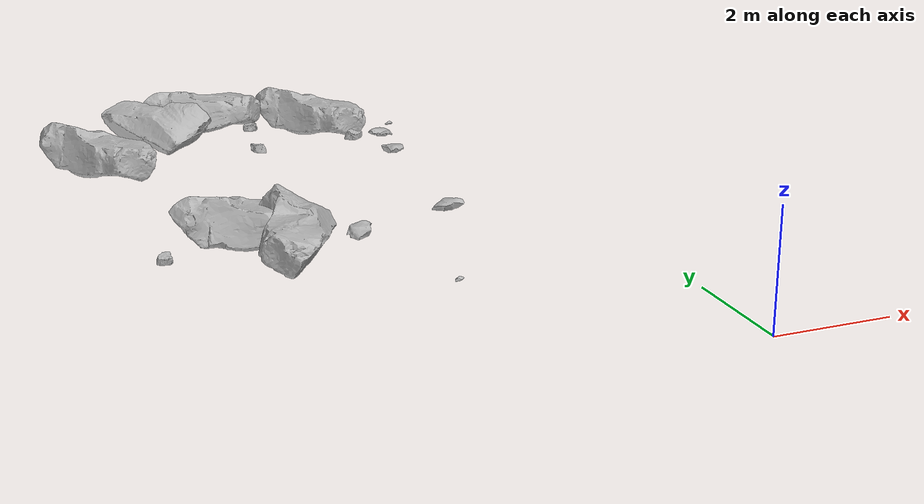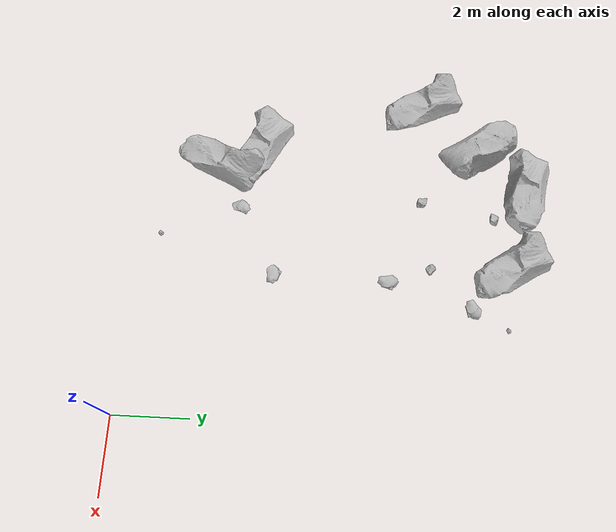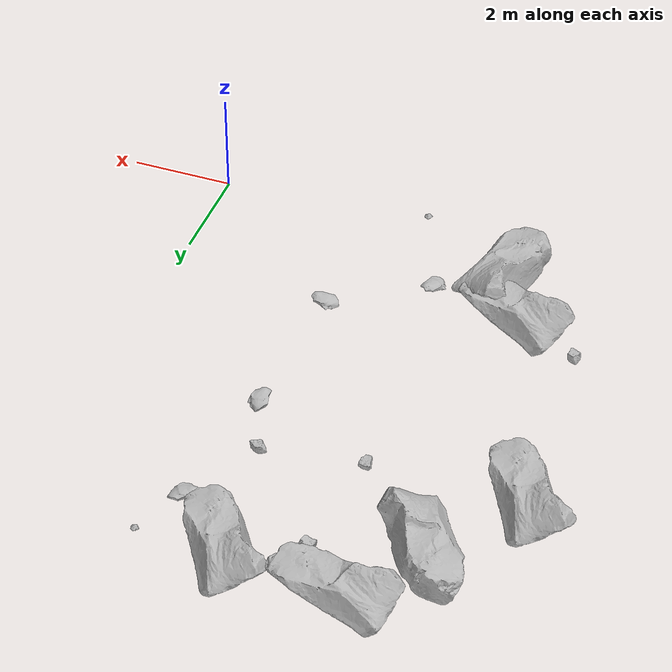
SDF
<sdf version="1.7">
 <world name="marsyard">
  <model name="Rock_8">
   <static>true</static>
   <pose>-6.7758 3.3332 1.2201 0.0000 0.0000 2.8856</pose>
   <link name="link">
    <visual name="visual">
     <geometry><mesh><uri>package://rock_generator/rocks_ws/rock_4/meshes/rock_4.obj</uri></mesh></geometry>
    </visual>
   </link>
  </model>
  <model name="Rock_12">
   <static>true</static>
   <pose>-3.9388 9.7938 0.8836 0.0000 0.0000 2.3470</pose>
   <link name="link">
    <visual name="visual">
     <geometry><mesh><uri>package://rock_generator/rocks_ws/rock_4/meshes/rock_4.obj</uri></mesh></geometry>
    </visual>
    <collision name="collision">
     <geometry><mesh><uri>package://rock_generator/rocks_ws/rock_4/meshes/rock_4.obj</uri></mesh></geometry>
    </collision>
   </link>
  </model>
  <model name="Rock_35">
   <static>true</static>
   <pose>-3.7587 7.7952 1.2228 0.0000 0.0000 -1.7692</pose>
   <link name="link">
    <visual name="visual">
     <geometry><mesh><uri>package://rock_generator/rocks_ws/rock_1/meshes/rock_1.obj</uri></mesh></geometry>
    </visual>
    <collision name="collision">
     <geometry><mesh><uri>package://rock_generator/rocks_ws/rock_1/meshes/rock_1.obj</uri></mesh></geometry>
    </collision>
   </link>
  </model>
  <model name="Rock_64">
   <static>true</static>
   <pose>-2.8774 8.8692 0.9611 0.0000 0.0000 0.3444</pose>
   <link name="link">
    <visual name="visual">
     <geometry><mesh><uri>package://rock_generator/rocks_ws/rock_8/meshes/rock_8.obj</uri></mesh></geometry>
    </visual>
   </link>
  </model>
  <model name="Rock_74">
   <static>true</static>
   <pose>-7.9724 3.5758 0.9450 0.0000 0.0000 -2.6435</pose>
   <link name="link">
    <visual name="visual">
     <geometry><mesh><uri>package://rock_generator/rocks_ws/rock_1/meshes/rock_1.obj</uri></mesh></geometry>
    </visual>
   </link>
  </model>
  <model name="Rock_115">
   <static>true</static>
   <pose>-3.4935 3.9079 1.2008 0.0000 0.0000 2.8785</pose>
   <link name="link">
    <visual name="visual">
     <geometry><mesh><uri>package://rock_generator/rocks_ws/rock_8/meshes/rock_8.obj</uri></mesh></geometry>
    </visual>
   </link>
  </model>
  <model name="Rock_143">
   <static>true</static>
   <pose>-5.9564 10.1952 1.0367 0.0000 0.0000 3.1188</pose>
   <link name="link">
    <visual name="visual">
     <geometry><mesh><uri>package://rock_generator/rocks_ws/rock_4/meshes/rock_4.obj</uri></mesh></geometry>
    </visual>
    <collision name="collision">
     <geometry><mesh><uri>package://rock_generator/rocks_ws/rock_4/meshes/rock_4.obj</uri></mesh></geometry>
    </collision>
   </link>
  </model>
  <model name="Rock_158">
   <static>true</static>
   <pose>-7.0875 9.0623 1.1663 0.0000 0.0000 -0.8560</pose>
   <link name="link">
    <visual name="visual">
     <geometry><mesh><uri>package://rock_generator/rocks_ws/rock_4/meshes/rock_4.obj</uri></mesh></geometry>
    </visual>
   </link>
  </model>
  <model name="Rock_163">
   <static>true</static>
   <pose>-5.2581 9.3813 1.0884 0.0000 0.0000 1.9774</pose>
   <link name="link">
    <visual name="visual">
     <geometry><mesh><uri>package://rock_generator/rocks_ws/rock_1/meshes/rock_1.obj</uri></mesh></geometry>
    </visual>
   </link>
  </model>
  <model name="Rock_166">
   <static>true</static>
   <pose>-5.2370 2.9698 1.3153 0.0000 0.0000 -2.2318</pose>
   <link name="link">
    <visual name="visual">
     <geometry><mesh><uri>package://rock_generator/rocks_ws/rock_8/meshes/rock_8.obj</uri></mesh></geometry>
    </visual>
   </link>
  </model>
  <model name="Rock_259">
   <static>true</static>
   <pose>-5.5845 7.5478 1.2435 0.0000 0.0000 0.6801</pose>
   <link name="link">
    <visual name="visual">
     <geometry><mesh><uri>package://rock_generator/rocks_ws/rock_1/meshes/rock_1.obj</uri></mesh></geometry>
    </visual>
   </link>
  </model>
  <model name="Rock_275">
   <static>true</static>
   <pose>-4.4634 0.9794 1.1723 0.0000 0.0000 -2.2515</pose>
   <link name="link">
    <visual name="visual">
     <geometry><mesh><uri>package://rock_generator/rocks_ws/rock_5/meshes/rock_5.obj</uri></mesh></geometry>
    </visual>
    <collision name="collision">
     <geometry><mesh><uri>package://rock_generator/rocks_ws/rock_5/meshes/rock_5.obj</uri></mesh></geometry>
    </collision>
   </link>
  </model>
  <model name="Rock_307">
   <static>true</static>
   <pose>-3.3798 6.7421 1.3018 0.0000 0.0000 1.4148</pose>
   <link name="link">
    <visual name="visual">
     <geometry><mesh><uri>package://rock_generator/rocks_ws/rock_8/meshes/rock_8.obj</uri></mesh></geometry>
    </visual>
    <collision name="collision">
     <geometry><mesh><uri>package://rock_generator/rocks_ws/rock_8/meshes/rock_8.obj</uri></mesh></geometry>
    </collision>
   </link>
  </model>
  <model name="Rock_312">
   <static>true</static>
   <pose>-8.2370 7.4606 1.2323 0.0000 0.0000 2.2721</pose>
   <link name="link">
    <visual name="visual">
     <geometry><mesh><uri>package://rock_generator/rocks_ws/rock_4/meshes/rock_4.obj</uri></mesh></geometry>
    </visual>
    <collision name="collision">
     <geometry><mesh><uri>package://rock_generator/rocks_ws/rock_4/meshes/rock_4.obj</uri></mesh></geometry>
    </collision>
   </link>
  </model>
  <model name="Rock_315">
   <static>true</static>
   <pose>-2.4222 9.7761 0.8522 0.0000 0.0000 -2.5323</pose>
   <link name="link">
    <visual name="visual">
     <geometry><mesh><uri>package://rock_generator/rocks_ws/rock_5/meshes/rock_5.obj</uri></mesh></geometry>
    </visual>
    <collision name="collision">
     <geometry><mesh><uri>package://rock_generator/rocks_ws/rock_5/meshes/rock_5.obj</uri></mesh></geometry>
    </collision>
   </link>
  </model>
  <model name="Rock_342">
   <static>true</static>
   <pose>-6.3790 2.3640 1.3091 0.0000 0.0000 1.3728</pose>
   <link name="link">
    <visual name="visual">
     <geometry><mesh><uri>package://rock_generator/rocks_ws/rock_4/meshes/rock_4.obj</uri></mesh></geometry>
    </visual>
   </link>
  </model>
 </world>
</sdf>
